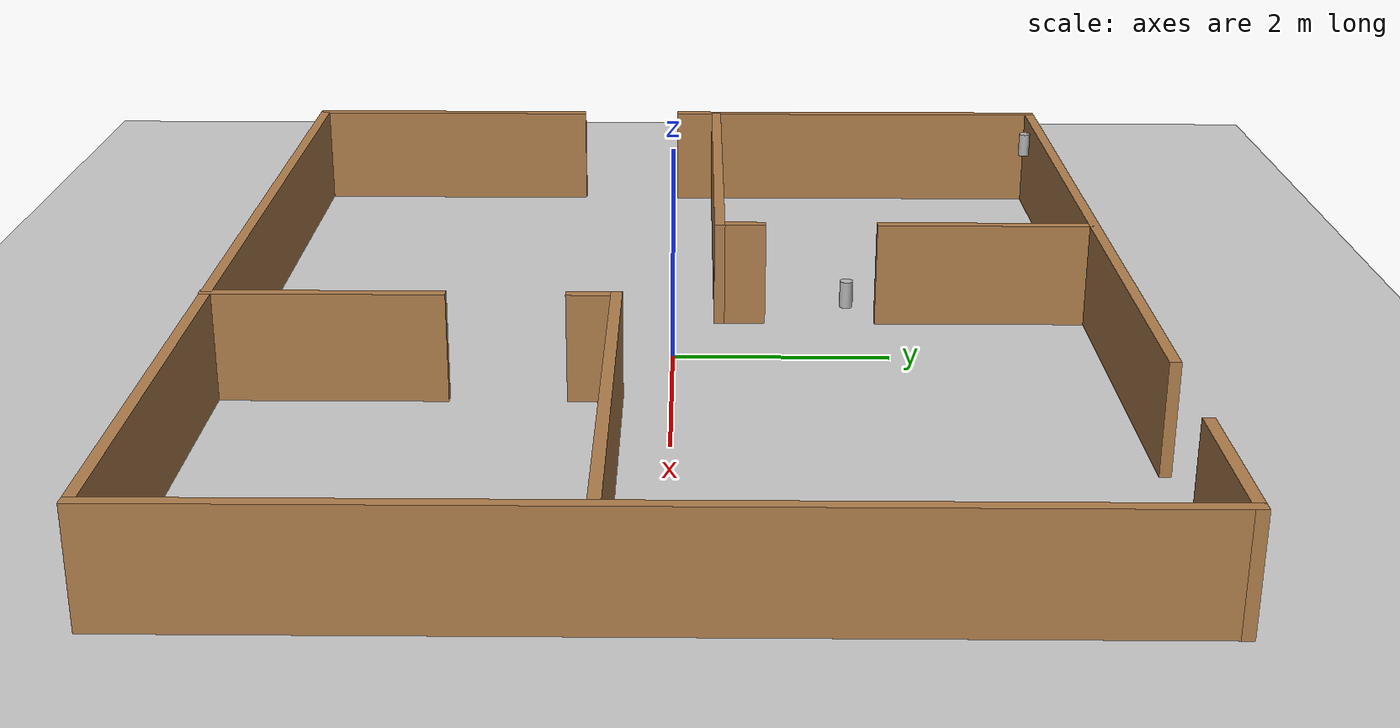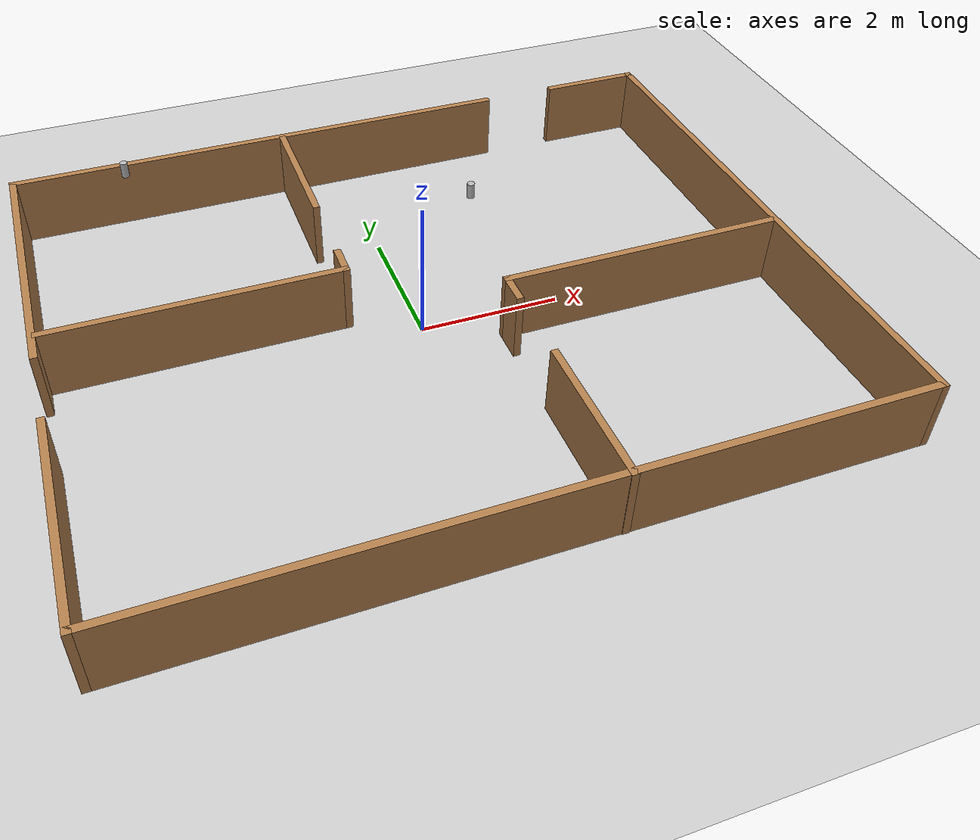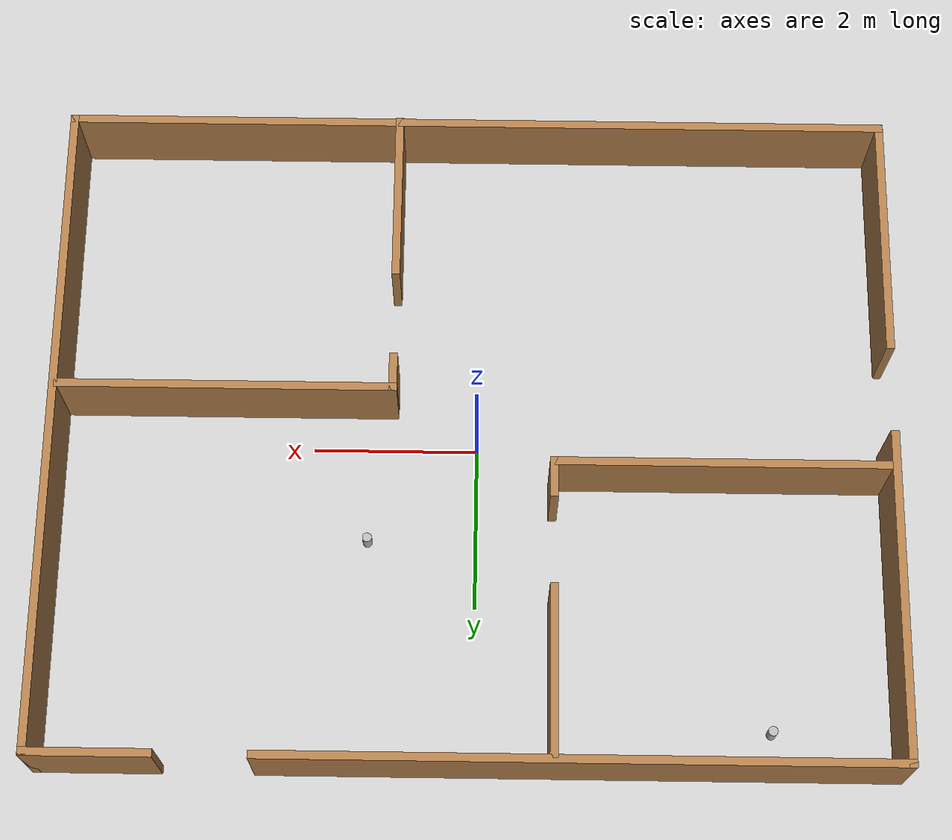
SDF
<sdf version="1.6">
 <world name="default">
  <light name="sun" type="directional">
   <pose>0 0 10 0 -0 0</pose>
   <diffuse>0.8 0.8 0.8 1</diffuse>
   <specular>0.1 0.1 0.1 1</specular>
   <attenuation>
    <range>1000</range>
    <constant>0.9</constant>
    <linear>0.01</linear>
    <quadratic>0.001</quadratic>
   </attenuation>
   <direction>-0.5 0.5 -1</direction>
  </light>
  <model name="ground_plane">
   <static>1</static>
   <link name="link">
    <collision name="collision">
     <geometry><plane><normal>0 0 1</normal><size>100 100</size></plane></geometry>
     <surface><friction><ode><mu>100</mu><mu2>50</mu2></ode></friction></surface>
    </collision>
    <visual name="visual">
     <cast_shadows>0</cast_shadows>
     <geometry><plane><normal>0 0 1</normal><size>100 100</size></plane></geometry>
     <material>
      <script><uri>file://media/materials/scripts/gazebo.material</uri><name>Gazebo/Tiles</name></script>
     </material>
    </visual>
   </link>
  </model>
  <gravity>0 0 -9.8</gravity>
  <magnetic_field>6e-06 2.3e-05 -4.2e-05</magnetic_field>
  <atmosphere type="adiabatic"/>
  <physics name="default_physics" default="0" type="ode">
   <max_step_size>0.001</max_step_size>
   <real_time_factor>1</real_time_factor>
   <real_time_update_rate>1000</real_time_update_rate>
  </physics>
  <scene><ambient>0.4 0.4 0.4 1</ambient><background>0.7 0.7 0.7 1</background><shadows>1</shadows></scene>
  <spherical_coordinates>
   <surface_model>EARTH_WGS84</surface_model>
   <latitude_deg>0</latitude_deg>
   <longitude_deg>0</longitude_deg>
   <elevation>0</elevation>
   <heading_deg>0</heading_deg>
  </spherical_coordinates>
  <model name="RoboCup_Home">
   <pose>0.0595 -0.023998 0 0 -0 0</pose>
   <link name="Wall_10">
    <collision name="Wall_10_Collision">
     <geometry><box><size>8.139 0.1 1</size></box></geometry>
     <pose>0 0 0.5 0 -0 0</pose>
    </collision>
    <visual name="Wall_10_Visual">
     <pose>0 0 0.5 0 -0 0</pose>
     <geometry><box><size>8.139 0.1 1</size></box></geometry>
     <material>
      <script><uri>file://media/materials/scripts/gazebo.material</uri><name>Gazebo/Wood</name></script>
      <ambient>1 1 1 1</ambient>
     </material>
    </visual>
    <pose>5.0505 0.004498 0 0 -0 1.5708</pose>
   </link>
   <link name="Wall_16">
    <collision name="Wall_16_Collision">
     <geometry><box><size>3.03123 0.1 1</size></box></geometry>
     <pose>0 0 0.5 0 -0 0</pose>
    </collision>
    <visual name="Wall_16_Visual">
     <pose>0 0 0.5 0 -0 0</pose>
     <geometry><box><size>3.03123 0.1 1</size></box></geometry>
     <material>
      <script><uri>file://media/materials/scripts/gazebo.material</uri><name>Gazebo/Wood</name></script>
      <ambient>1 1 1 1</ambient>
     </material>
    </visual>
    <pose>-5.0505 -2.5495 0 0 -0 1.5708</pose>
   </link>
   <link name="Wall_18">
    <collision name="Wall_18_Collision">
     <geometry><box><size>4.05777 0.1 1</size></box></geometry>
     <pose>0 0 0.5 0 -0 0</pose>
    </collision>
    <visual name="Wall_18_Visual">
     <pose>0 0 0.5 0 -0 0</pose>
     <geometry><box><size>4.05777 0.1 1</size></box></geometry>
     <material>
      <script><uri>file://media/materials/scripts/gazebo.material</uri><name>Gazebo/Wood</name></script>
      <ambient>1 1 1 1</ambient>
     </material>
    </visual>
    <pose>-5.0505 2.045 0 0 0 -1.5708</pose>
   </link>
   <link name="Wall_20">
    <collision name="Wall_20_Collision">
     <geometry><box><size>7.591 0.1 1</size></box></geometry>
     <pose>0 0 0.5 0 -0 0</pose>
    </collision>
    <visual name="Wall_20_Visual">
     <pose>0 0 0.5 0 -0 0</pose>
     <geometry><box><size>7.591 0.1 1</size></box></geometry>
     <material>
      <script><uri>file://media/materials/scripts/gazebo.material</uri><name>Gazebo/Wood</name></script>
      <ambient>1 1 1 1</ambient>
     </material>
    </visual>
    <pose>-1.305 4.024 0 0 -0 0</pose>
   </link>
   <link name="Wall_23">
    <collision name="Wall_23_Collision">
     <geometry><box><size>1.53 0.1 1</size></box></geometry>
     <pose>0 0 0.5 0 -0 0</pose>
    </collision>
    <visual name="Wall_23_Visual">
     <pose>0 0 0.5 0 -0 0</pose>
     <geometry><box><size>1.53 0.1 1</size></box></geometry>
     <material>
      <script><uri>file://media/materials/scripts/gazebo.material</uri><name>Gazebo/Wood</name></script>
      <ambient>1 1 1 1</ambient>
     </material>
    </visual>
    <pose>4.3355 4.024 0 0 -0 3.14159</pose>
   </link>
   <link name="Wall_25">
    <collision name="Wall_25_Collision">
     <geometry><box><size>4.103 0.1 1</size></box></geometry>
     <pose>0 0 0.5 0 -0 0</pose>
    </collision>
    <visual name="Wall_25_Visual">
     <pose>0 0 0.5 0 -0 0</pose>
     <geometry><box><size>4.103 0.1 1</size></box></geometry>
     <material>
      <script><uri>file://media/materials/scripts/gazebo.material</uri><name>Gazebo/Wood</name></script>
      <ambient>1 1 1 1</ambient>
     </material>
    </visual>
    <pose>-2.991 0.456998 0 0 -0 0</pose>
   </link>
   <link name="Wall_26">
    <collision name="Wall_26_Collision">
     <geometry><box><size>0.491228 0.1 1</size></box></geometry>
     <pose>0 0 0.5 0 -0 0</pose>
    </collision>
    <visual name="Wall_26_Visual">
     <pose>0 0 0.5 0 -0 0</pose>
     <geometry><box><size>0.491228 0.1 1</size></box></geometry>
     <material>
      <script><uri>file://media/materials/scripts/gazebo.material</uri><name>Gazebo/Wood</name></script>
      <ambient>1 1 1 1</ambient>
     </material>
    </visual>
    <pose>-0.9895 0.652498 0 0 -0 1.5708</pose>
   </link>
   <link name="Wall_28">
    <collision name="Wall_28_Collision">
     <geometry><box><size>2.0553 0.1 1</size></box></geometry>
     <pose>0 0 0.5 0 -0 0</pose>
    </collision>
    <visual name="Wall_28_Visual">
     <pose>0 0 0.5 0 -0 0</pose>
     <geometry><box><size>2.0553 0.1 1</size></box></geometry>
     <material>
      <script><uri>file://media/materials/scripts/gazebo.material</uri><name>Gazebo/Wood</name></script>
      <ambient>1 1 1 1</ambient>
     </material>
    </visual>
    <pose>-0.9895 2.9875 0 0 0 -1.5708</pose>
   </link>
   <link name="Wall_30">
    <collision name="Wall_30_Collision">
     <geometry><box><size>4.129 0.1 1</size></box></geometry>
     <pose>0 0 0.5 0 -0 0</pose>
    </collision>
    <visual name="Wall_30_Visual">
     <pose>0 0 0.5 0 -0 0</pose>
     <geometry><box><size>4.129 0.1 1</size></box></geometry>
     <material>
      <script><uri>file://media/materials/scripts/gazebo.material</uri><name>Gazebo/Wood</name></script>
      <ambient>1 1 1 1</ambient>
     </material>
    </visual>
    <pose>2.975 -0.456001 0 0 -0 3.14159</pose>
   </link>
   <link name="Wall_31">
    <collision name="Wall_31_Collision">
     <geometry><box><size>0.49 0.1 1</size></box></geometry>
     <pose>0 0 0.5 0 -0 0</pose>
    </collision>
    <visual name="Wall_31_Visual">
     <pose>0 0 0.5 0 -0 0</pose>
     <geometry><box><size>0.49 0.1 1</size></box></geometry>
     <material>
      <script><uri>file://media/materials/scripts/gazebo.material</uri><name>Gazebo/Wood</name></script>
      <ambient>1 1 1 1</ambient>
     </material>
    </visual>
    <pose>0.9605 -0.651002 0 0 0 -1.5708</pose>
   </link>
   <link name="Wall_33">
    <collision name="Wall_33_Collision">
     <geometry><box><size>2.138 0.1 1</size></box></geometry>
     <pose>0 0 0.5 0 -0 0</pose>
    </collision>
    <visual name="Wall_33_Visual">
     <pose>0 0 0.5 0 -0 0</pose>
     <geometry><box><size>2.138 0.1 1</size></box></geometry>
     <material>
      <script><uri>file://media/materials/scripts/gazebo.material</uri><name>Gazebo/Wood</name></script>
      <ambient>1 1 1 1</ambient>
     </material>
    </visual>
    <pose>0.9605 -3.005 0 0 -0 1.5708</pose>
   </link>
   <link name="Wall_6">
    <collision name="Wall_6_Collision">
     <geometry><box><size>10.2 0.1 1</size></box></geometry>
     <pose>0 0 0.5 0 -0 0</pose>
    </collision>
    <visual name="Wall_6_Visual">
     <pose>0 0 0.5 0 -0 0</pose>
     <geometry><box><size>10.2 0.1 1</size></box></geometry>
     <material>
      <script><uri>file://media/materials/scripts/gazebo.material</uri><name>Gazebo/Wood</name></script>
      <ambient>1 1 1 1</ambient>
     </material>
    </visual>
    <pose>0 -4.015 0 0 -0 0</pose>
   </link>
   <static>1</static>
  </model>
  <model name="beer">
   <link name="link">
    <pose>0 0 0.115 0 -0 0</pose>
    <inertial>
     <mass>0.39</mass>
     <inertia><ixx>0.00058</ixx><ixy>0</ixy><ixz>0</ixz><iyy>0.00058</iyy><iyz>0</iyz><izz>0.00019</izz></inertia>
    </inertial>
    <collision name="collision">
     <geometry><cylinder><radius>0.055</radius><length>0.23</length></cylinder></geometry>
    </collision>
    <visual name="visual">
     <geometry><cylinder><radius>0.055</radius><length>0.23</length></cylinder></geometry>
     <material>
      <script>
       <uri>model://beer/materials/scripts</uri>
       <uri>model://beer/materials/textures</uri>
       <name>Beer/Diffuse</name>
      </script>
     </material>
    </visual>
   </link>
   <pose>1.25806 1.48145 0.979759 -7e-05 -0.000171 0.000438</pose>
  </model>
  <model name="beer_0">
   <link name="link">
    <pose>0 0 0.115 0 -0 0</pose>
    <inertial>
     <mass>0.39</mass>
     <inertia><ixx>0.00058</ixx><ixy>0</ixy><ixz>0</ixz><iyy>0.00058</iyy><iyz>0</iyz><izz>0.00019</izz></inertia>
    </inertial>
    <collision name="collision">
     <geometry><cylinder><radius>0.055</radius><length>0.23</length></cylinder></geometry>
    </collision>
    <visual name="visual">
     <geometry><cylinder><radius>0.055</radius><length>0.23</length></cylinder></geometry>
     <material>
      <script>
       <uri>model://beer/materials/scripts</uri>
       <uri>model://beer/materials/textures</uri>
       <name>Beer/Diffuse</name>
      </script>
     </material>
    </visual>
   </link>
   <pose>-3.38623 3.69797 0.980038 -7.4e-05 0.001566 -0.00129</pose>
  </model>
 </world>
</sdf>
